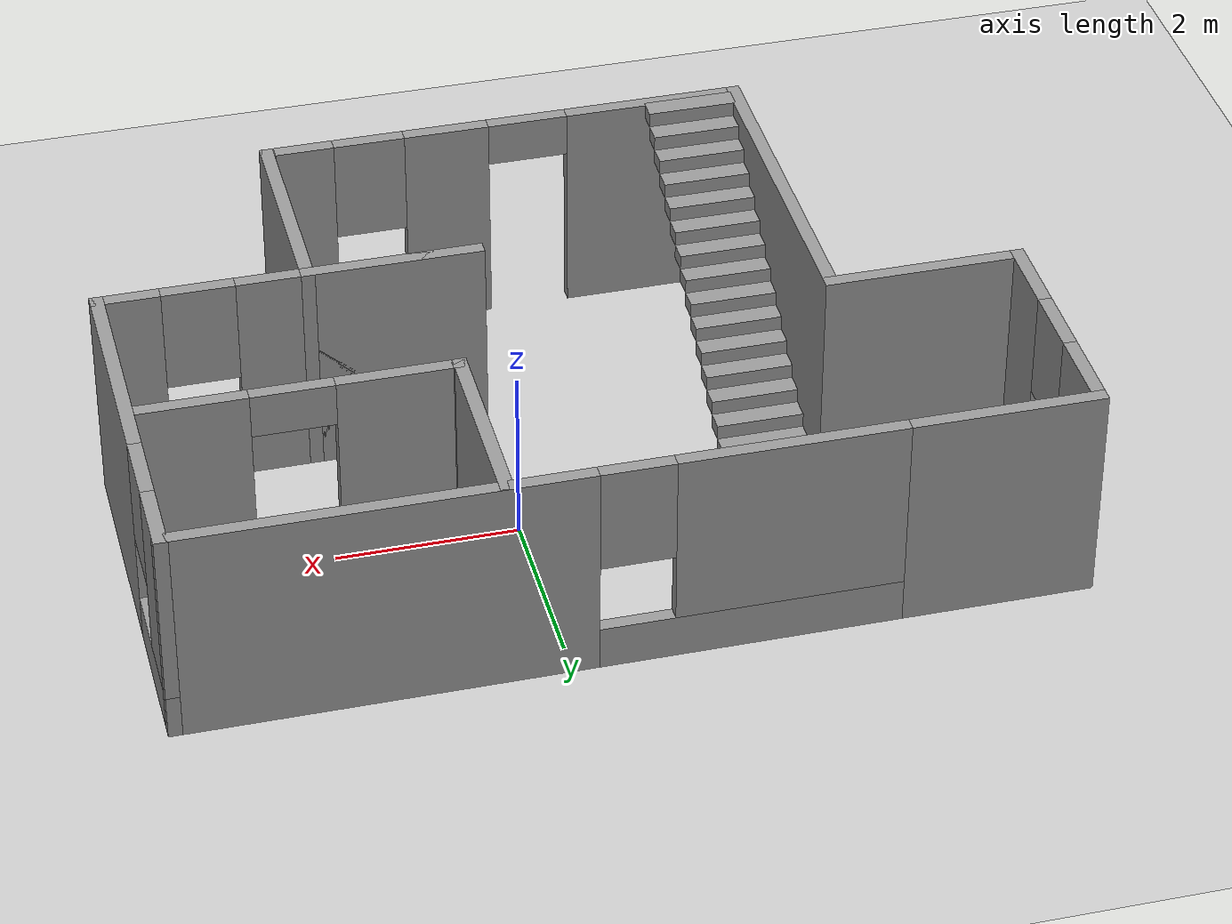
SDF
<sdf version="1.7">
 <world name="default">
  <light name="sun" type="directional">
   <pose>0 0 10 0 -0 0</pose>
   <diffuse>0.8 0.8 0.8 1</diffuse>
   <specular>0.2 0.2 0.2 1</specular>
   <attenuation>
    <range>1000</range>
    <constant>0.9</constant>
    <linear>0.01</linear>
    <quadratic>0.001</quadratic>
   </attenuation>
   <direction>-0.5 0.1 -0.9</direction>
   <spot><inner_angle>0</inner_angle><outer_angle>0</outer_angle><falloff>0</falloff></spot>
  </light>
  <model name="ground_plane">
   <static>1</static>
   <link name="link">
    <collision name="collision">
     <geometry><plane><normal>0 0 1</normal><size>100 100</size></plane></geometry>
     <surface>
      <contact><collide_bitmask>65535</collide_bitmask></contact>
      <friction><ode><mu>100</mu><mu2>50</mu2></ode></friction>
     </surface>
    </collision>
    <visual name="visual">
     <cast_shadows>0</cast_shadows>
     <geometry><plane><normal>0 0 1</normal><size>100 100</size></plane></geometry>
     <material>
      <script><uri>file://media/materials/scripts/gazebo.material</uri><name>Gazebo/Grey</name></script>
     </material>
    </visual>
   </link>
  </model>
  <gravity>0 0 -9.8</gravity>
  <magnetic_field>6e-06 2.3e-05 -4.2e-05</magnetic_field>
  <atmosphere type="adiabatic"/>
  <physics type="ode">
   <max_step_size>0.001</max_step_size>
   <real_time_factor>1</real_time_factor>
   <real_time_update_rate>1000</real_time_update_rate>
  </physics>
  <scene><ambient>0.4 0.4 0.4 1</ambient><background>0.7 0.7 0.7 1</background><shadows>1</shadows></scene>
  <spherical_coordinates>
   <surface_model>EARTH_WGS84</surface_model>
   <latitude_deg>0</latitude_deg>
   <longitude_deg>0</longitude_deg>
   <elevation>0</elevation>
   <heading_deg>0</heading_deg>
  </spherical_coordinates>
  <model name="Building">
   <pose>-0.724399 -0.913088 0 0 -0 0</pose>
   <link name="Stairs_0">
    <visual name="Stairs_0_Visual_0">
     <pose>-2.20765 0.182922 0.083333 0 -0 0</pose>
     <geometry><box><size>1 0.233333 0.166667</size></box></geometry>
     <material>
      <script><uri>file://media/materials/scripts/gazebo.material</uri><name>Gazebo/Grey</name></script>
      <ambient>1 1 1 1</ambient>
     </material>
     <meta><layer>0</layer></meta>
    </visual>
    <collision name="Stairs_0_Collision_0">
     <geometry><box><size>1 0.233333 0.166667</size></box></geometry>
     <pose>-2.20765 0.182922 0.083333 0 -0 0</pose>
    </collision>
    <visual name="Stairs_0_Visual_1">
     <pose>-2.20765 -0.050412 0.25 0 -0 0</pose>
     <geometry><box><size>1 0.233333 0.166667</size></box></geometry>
     <material>
      <script><uri>file://media/materials/scripts/gazebo.material</uri><name>Gazebo/Grey</name></script>
      <ambient>1 1 1 1</ambient>
     </material>
     <meta><layer>0</layer></meta>
    </visual>
    <collision name="Stairs_0_Collision_1">
     <geometry><box><size>1 0.233333 0.166667</size></box></geometry>
     <pose>-2.20765 -0.050412 0.25 0 -0 0</pose>
    </collision>
    <visual name="Stairs_0_Visual_2">
     <pose>-2.20765 -0.283745 0.416667 0 -0 0</pose>
     <geometry><box><size>1 0.233333 0.166667</size></box></geometry>
     <material>
      <script><uri>file://media/materials/scripts/gazebo.material</uri><name>Gazebo/Grey</name></script>
      <ambient>1 1 1 1</ambient>
     </material>
     <meta><layer>0</layer></meta>
    </visual>
    <collision name="Stairs_0_Collision_2">
     <geometry><box><size>1 0.233333 0.166667</size></box></geometry>
     <pose>-2.20765 -0.283745 0.416667 0 -0 0</pose>
    </collision>
    <visual name="Stairs_0_Visual_3">
     <pose>-2.20765 -0.517078 0.583333 0 -0 0</pose>
     <geometry><box><size>1 0.233333 0.166667</size></box></geometry>
     <material>
      <script><uri>file://media/materials/scripts/gazebo.material</uri><name>Gazebo/Grey</name></script>
      <ambient>1 1 1 1</ambient>
     </material>
     <meta><layer>0</layer></meta>
    </visual>
    <collision name="Stairs_0_Collision_3">
     <geometry><box><size>1 0.233333 0.166667</size></box></geometry>
     <pose>-2.20765 -0.517078 0.583333 0 -0 0</pose>
    </collision>
    <visual name="Stairs_0_Visual_4">
     <pose>-2.20765 -0.750412 0.75 0 -0 0</pose>
     <geometry><box><size>1 0.233333 0.166667</size></box></geometry>
     <material>
      <script><uri>file://media/materials/scripts/gazebo.material</uri><name>Gazebo/Grey</name></script>
      <ambient>1 1 1 1</ambient>
     </material>
     <meta><layer>0</layer></meta>
    </visual>
    <collision name="Stairs_0_Collision_4">
     <geometry><box><size>1 0.233333 0.166667</size></box></geometry>
     <pose>-2.20765 -0.750412 0.75 0 -0 0</pose>
    </collision>
    <visual name="Stairs_0_Visual_5">
     <pose>-2.20765 -0.983745 0.916667 0 -0 0</pose>
     <geometry><box><size>1 0.233333 0.166667</size></box></geometry>
     <material>
      <script><uri>file://media/materials/scripts/gazebo.material</uri><name>Gazebo/Grey</name></script>
      <ambient>1 1 1 1</ambient>
     </material>
     <meta><layer>0</layer></meta>
    </visual>
    <collision name="Stairs_0_Collision_5">
     <geometry><box><size>1 0.233333 0.166667</size></box></geometry>
     <pose>-2.20765 -0.983745 0.916667 0 -0 0</pose>
    </collision>
    <visual name="Stairs_0_Visual_6">
     <pose>-2.20765 -1.21708 1.08333 0 -0 0</pose>
     <geometry><box><size>1 0.233333 0.166667</size></box></geometry>
     <material>
      <script><uri>file://media/materials/scripts/gazebo.material</uri><name>Gazebo/Grey</name></script>
      <ambient>1 1 1 1</ambient>
     </material>
     <meta><layer>0</layer></meta>
    </visual>
    <collision name="Stairs_0_Collision_6">
     <geometry><box><size>1 0.233333 0.166667</size></box></geometry>
     <pose>-2.20765 -1.21708 1.08333 0 -0 0</pose>
    </collision>
    <visual name="Stairs_0_Visual_7">
     <pose>-2.20765 -1.45041 1.25 0 -0 0</pose>
     <geometry><box><size>1 0.233333 0.166667</size></box></geometry>
     <material>
      <script><uri>file://media/materials/scripts/gazebo.material</uri><name>Gazebo/Grey</name></script>
      <ambient>1 1 1 1</ambient>
     </material>
     <meta><layer>0</layer></meta>
    </visual>
    <collision name="Stairs_0_Collision_7">
     <geometry><box><size>1 0.233333 0.166667</size></box></geometry>
     <pose>-2.20765 -1.45041 1.25 0 -0 0</pose>
    </collision>
    <visual name="Stairs_0_Visual_8">
     <pose>-2.20765 -1.68375 1.41667 0 -0 0</pose>
     <geometry><box><size>1 0.233333 0.166667</size></box></geometry>
     <material>
      <script><uri>file://media/materials/scripts/gazebo.material</uri><name>Gazebo/Grey</name></script>
      <ambient>1 1 1 1</ambient>
     </material>
     <meta><layer>0</layer></meta>
    </visual>
    <collision name="Stairs_0_Collision_8">
     <geometry><box><size>1 0.233333 0.166667</size></box></geometry>
     <pose>-2.20765 -1.68375 1.41667 0 -0 0</pose>
    </collision>
    <visual name="Stairs_0_Visual_9">
     <pose>-2.20765 -1.91708 1.58333 0 -0 0</pose>
     <geometry><box><size>1 0.233333 0.166667</size></box></geometry>
     <material>
      <script><uri>file://media/materials/scripts/gazebo.material</uri><name>Gazebo/Grey</name></script>
      <ambient>1 1 1 1</ambient>
     </material>
     <meta><layer>0</layer></meta>
    </visual>
    <collision name="Stairs_0_Collision_9">
     <geometry><box><size>1 0.233333 0.166667</size></box></geometry>
     <pose>-2.20765 -1.91708 1.58333 0 -0 0</pose>
    </collision>
    <visual name="Stairs_0_Visual_10">
     <pose>-2.20765 -2.15041 1.75 0 -0 0</pose>
     <geometry><box><size>1 0.233333 0.166667</size></box></geometry>
     <material>
      <script><uri>file://media/materials/scripts/gazebo.material</uri><name>Gazebo/Grey</name></script>
      <ambient>1 1 1 1</ambient>
     </material>
     <meta><layer>0</layer></meta>
    </visual>
    <collision name="Stairs_0_Collision_10">
     <geometry><box><size>1 0.233333 0.166667</size></box></geometry>
     <pose>-2.20765 -2.15041 1.75 0 -0 0</pose>
    </collision>
    <visual name="Stairs_0_Visual_11">
     <pose>-2.20765 -2.38374 1.91667 0 -0 0</pose>
     <geometry><box><size>1 0.233333 0.166667</size></box></geometry>
     <material>
      <script><uri>file://media/materials/scripts/gazebo.material</uri><name>Gazebo/Grey</name></script>
      <ambient>1 1 1 1</ambient>
     </material>
     <meta><layer>0</layer></meta>
    </visual>
    <collision name="Stairs_0_Collision_11">
     <geometry><box><size>1 0.233333 0.166667</size></box></geometry>
     <pose>-2.20765 -2.38374 1.91667 0 -0 0</pose>
    </collision>
    <visual name="Stairs_0_Visual_12">
     <pose>-2.20765 -2.61708 2.08333 0 -0 0</pose>
     <geometry><box><size>1 0.233333 0.166667</size></box></geometry>
     <material>
      <script><uri>file://media/materials/scripts/gazebo.material</uri><name>Gazebo/Grey</name></script>
      <ambient>1 1 1 1</ambient>
     </material>
     <meta><layer>0</layer></meta>
    </visual>
    <collision name="Stairs_0_Collision_12">
     <geometry><box><size>1 0.233333 0.166667</size></box></geometry>
     <pose>-2.20765 -2.61708 2.08333 0 -0 0</pose>
    </collision>
    <visual name="Stairs_0_Visual_13">
     <pose>-2.20765 -2.85041 2.25 0 -0 0</pose>
     <geometry><box><size>1 0.233333 0.166667</size></box></geometry>
     <material>
      <script><uri>file://media/materials/scripts/gazebo.material</uri><name>Gazebo/Grey</name></script>
      <ambient>1 1 1 1</ambient>
     </material>
     <meta><layer>0</layer></meta>
    </visual>
    <collision name="Stairs_0_Collision_13">
     <geometry><box><size>1 0.233333 0.166667</size></box></geometry>
     <pose>-2.20765 -2.85041 2.25 0 -0 0</pose>
    </collision>
    <visual name="Stairs_0_Visual_14">
     <pose>-2.20765 -3.08374 2.41667 0 -0 0</pose>
     <geometry><box><size>1 0.233333 0.166667</size></box></geometry>
     <material>
      <script><uri>file://media/materials/scripts/gazebo.material</uri><name>Gazebo/Grey</name></script>
      <ambient>1 1 1 1</ambient>
     </material>
     <meta><layer>0</layer></meta>
    </visual>
    <collision name="Stairs_0_Collision_14">
     <geometry><box><size>1 0.233333 0.166667</size></box></geometry>
     <pose>-2.20765 -3.08374 2.41667 0 -0 0</pose>
    </collision>
   </link>
   <link name="Wall_0">
    <collision name="Wall_0_Collision">
     <geometry><box><size>4 0.15 2.5</size></box></geometry>
     <pose>0 0 1.25 0 -0 0</pose>
    </collision>
    <visual name="Wall_0_Visual">
     <pose>0 0 1.25 0 -0 0</pose>
     <geometry><box><size>4 0.15 2.5</size></box></geometry>
     <material>
      <script><uri>file://media/materials/scripts/gazebo.material</uri><name>Gazebo/Grey</name></script>
      <ambient>1 1 1 1</ambient>
     </material>
     <meta><layer>0</layer></meta>
    </visual>
    <pose>-2.76 -1.3 0 0 -0 -1.5708</pose>
   </link>
   <link name="Wall_10">
    <pose>-4.85 1.925 0 0 -0 -1.5708</pose>
    <visual name="Wall_10_Visual_0">
     <pose>-0.867719 0 1.25 0 -0 0</pose>
     <geometry><box><size>1.01456 0.15 2.5</size></box></geometry>
     <material>
      <script><uri>file://media/materials/scripts/gazebo.material</uri><name>Gazebo/Grey</name></script>
      <ambient>1 1 1 1</ambient>
     </material>
     <meta><layer>0</layer></meta>
    </visual>
    <collision name="Wall_10_Collision_0">
     <geometry><box><size>1.01456 0.15 2.5</size></box></geometry>
     <pose>-0.867719 0 1.25 0 -0 0</pose>
    </collision>
    <visual name="Wall_10_Visual_1">
     <pose>0.507281 0 0.25 0 -0 0</pose>
     <geometry><box><size>1.73544 0.15 0.5</size></box></geometry>
     <material>
      <script><uri>file://media/materials/scripts/gazebo.material</uri><name>Gazebo/Grey</name></script>
      <ambient>1 1 1 1</ambient>
     </material>
     <meta><layer>0</layer></meta>
    </visual>
    <collision name="Wall_10_Collision_1">
     <geometry><box><size>1.73544 0.15 0.5</size></box></geometry>
     <pose>0.507281 0 0.25 0 -0 0</pose>
    </collision>
    <visual name="Wall_10_Visual_2">
     <pose>0.907281 0 1.5 0 -0 0</pose>
     <geometry><box><size>0.935438 0.15 2</size></box></geometry>
     <material>
      <script><uri>file://media/materials/scripts/gazebo.material</uri><name>Gazebo/Grey</name></script>
      <ambient>1 1 1 1</ambient>
     </material>
     <meta><layer>0</layer></meta>
    </visual>
    <collision name="Wall_10_Collision_2">
     <geometry><box><size>0.935438 0.15 2</size></box></geometry>
     <pose>0.907281 0 1.5 0 -0 0</pose>
    </collision>
    <visual name="Wall_10_Visual_3">
     <pose>0.039562 0 1.9 0 -0 0</pose>
     <geometry><box><size>0.8 0.15 1.2</size></box></geometry>
     <material>
      <script><uri>file://media/materials/scripts/gazebo.material</uri><name>Gazebo/Grey</name></script>
      <ambient>1 1 1 1</ambient>
     </material>
     <meta><layer>0</layer></meta>
    </visual>
    <collision name="Wall_10_Collision_3">
     <geometry><box><size>0.8 0.15 1.2</size></box></geometry>
     <pose>0.039562 0 1.9 0 -0 0</pose>
    </collision>
   </link>
   <link name="Wall_11">
    <collision name="Wall_11_Collision">
     <geometry><box><size>2.24 0.15 2.5</size></box></geometry>
     <pose>0 0 1.25 0 -0 0</pose>
    </collision>
    <visual name="Wall_11_Visual">
     <pose>0 0 1.25 0 -0 0</pose>
     <geometry><box><size>2.24 0.15 2.5</size></box></geometry>
     <material>
      <script><uri>file://media/materials/scripts/gazebo.material</uri><name>Gazebo/Grey</name></script>
      <ambient>1 1 1 1</ambient>
     </material>
     <meta><layer>0</layer></meta>
    </visual>
    <pose>-3.805 0.625 0 0 -0 0</pose>
   </link>
   <link name="Wall_2">
    <pose>-0.085 -3.225 0 0 -0 0</pose>
    <visual name="Wall_2_Visual_0">
     <pose>-1.73077 0 1.25 0 -0 0</pose>
     <geometry><box><size>2.03845 0.15 2.5</size></box></geometry>
     <material>
      <script><uri>file://media/materials/scripts/gazebo.material</uri><name>Gazebo/Grey</name></script>
      <ambient>1 1 1 1</ambient>
     </material>
     <meta><layer>0</layer></meta>
    </visual>
    <collision name="Wall_2_Collision_0">
     <geometry><box><size>2.03845 0.15 2.5</size></box></geometry>
     <pose>-1.73077 0 1.25 0 -0 0</pose>
    </collision>
    <visual name="Wall_2_Visual_1">
     <pose>0.667406 0 1.25 0 -0 0</pose>
     <geometry><box><size>0.957909 0.15 2.5</size></box></geometry>
     <material>
      <script><uri>file://media/materials/scripts/gazebo.material</uri><name>Gazebo/Grey</name></script>
      <ambient>1 1 1 1</ambient>
     </material>
     <meta><layer>0</layer></meta>
    </visual>
    <collision name="Wall_2_Collision_1">
     <geometry><box><size>0.957909 0.15 2.5</size></box></geometry>
     <pose>0.667406 0 1.25 0 -0 0</pose>
    </collision>
    <visual name="Wall_2_Visual_2">
     <pose>1.94818 0 0.25 0 -0 0</pose>
     <geometry><box><size>1.60364 0.15 0.5</size></box></geometry>
     <material>
      <script><uri>file://media/materials/scripts/gazebo.material</uri><name>Gazebo/Grey</name></script>
      <ambient>1 1 1 1</ambient>
     </material>
     <meta><layer>0</layer></meta>
    </visual>
    <collision name="Wall_2_Collision_2">
     <geometry><box><size>1.60364 0.15 0.5</size></box></geometry>
     <pose>1.94818 0 0.25 0 -0 0</pose>
    </collision>
    <visual name="Wall_2_Visual_3">
     <pose>2.34818 0 1.5 0 -0 0</pose>
     <geometry><box><size>0.80364 0.15 2</size></box></geometry>
     <material>
      <script><uri>file://media/materials/scripts/gazebo.material</uri><name>Gazebo/Grey</name></script>
      <ambient>1 1 1 1</ambient>
     </material>
     <meta><layer>0</layer></meta>
    </visual>
    <collision name="Wall_2_Collision_3">
     <geometry><box><size>0.80364 0.15 2</size></box></geometry>
     <pose>2.34818 0 1.5 0 -0 0</pose>
    </collision>
    <visual name="Wall_2_Visual_4">
     <pose>1.54636 0 1.9 0 -0 0</pose>
     <geometry><box><size>0.8 0.15 1.2</size></box></geometry>
     <material>
      <script><uri>file://media/materials/scripts/gazebo.material</uri><name>Gazebo/Grey</name></script>
      <ambient>1 1 1 1</ambient>
     </material>
     <meta><layer>0</layer></meta>
    </visual>
    <collision name="Wall_2_Collision_4">
     <geometry><box><size>0.8 0.15 1.2</size></box></geometry>
     <pose>1.54636 0 1.9 0 -0 0</pose>
    </collision>
    <visual name="Wall_2_Visual_5">
     <pose>-0.261548 0 2.25 0 -0 0</pose>
     <geometry><box><size>0.9 0.15 0.5</size></box></geometry>
     <material>
      <script><uri>file://media/materials/scripts/gazebo.material</uri><name>Gazebo/Grey</name></script>
      <ambient>1 1 1 1</ambient>
     </material>
     <meta><layer>0</layer></meta>
    </visual>
    <collision name="Wall_2_Collision_5">
     <geometry><box><size>0.9 0.15 0.5</size></box></geometry>
     <pose>-0.261548 0 2.25 0 -0 0</pose>
    </collision>
   </link>
   <link name="Wall_23">
    <collision name="Wall_23_Collision">
     <geometry><box><size>2.25 0.15 2.5</size></box></geometry>
     <pose>0 0 1.25 0 -0 0</pose>
    </collision>
    <visual name="Wall_23_Visual">
     <pose>0 0 1.25 0 -0 0</pose>
     <geometry><box><size>2.25 0.15 2.5</size></box></geometry>
     <material>
      <script><uri>file://media/materials/scripts/gazebo.material</uri><name>Gazebo/Grey</name></script>
      <ambient>1 1 1 1</ambient>
     </material>
     <meta><layer>0</layer></meta>
    </visual>
    <pose>1.37088 2.16086 0 0 -0 -1.5708</pose>
   </link>
   <link name="Wall_24">
    <collision name="Wall_24_Collision">
     <geometry><box><size>0.16 0.15 2.5</size></box></geometry>
     <pose>0 0 1.25 0 -0 0</pose>
    </collision>
    <visual name="Wall_24_Visual">
     <pose>0 0 1.25 0 -0 0</pose>
     <geometry><box><size>0.16 0.15 2.5</size></box></geometry>
     <material>
      <script><uri>file://media/materials/scripts/gazebo.material</uri><name>Gazebo/Grey</name></script>
      <ambient>1 1 1 1</ambient>
     </material>
     <meta><layer>0</layer></meta>
    </visual>
    <pose>1.37588 1.11086 0 0 -0 0</pose>
   </link>
   <link name="Wall_25">
    <pose>3.05588 1.11086 0 0 -0 0</pose>
    <visual name="Wall_25_Visual_0">
     <pose>-1.05753 0 1.25 0 -0 0</pose>
     <geometry><box><size>1.38493 0.15 2.5</size></box></geometry>
     <material>
      <script><uri>file://media/materials/scripts/gazebo.material</uri><name>Gazebo/Grey</name></script>
      <ambient>1 1 1 1</ambient>
     </material>
     <meta><layer>0</layer></meta>
    </visual>
    <collision name="Wall_25_Collision_0">
     <geometry><box><size>1.38493 0.15 2.5</size></box></geometry>
     <pose>-1.05753 0 1.25 0 -0 0</pose>
    </collision>
    <visual name="Wall_25_Visual_1">
     <pose>1.14247 0 1.25 0 -0 0</pose>
     <geometry><box><size>1.21507 0.15 2.5</size></box></geometry>
     <material>
      <script><uri>file://media/materials/scripts/gazebo.material</uri><name>Gazebo/Grey</name></script>
      <ambient>1 1 1 1</ambient>
     </material>
     <meta><layer>0</layer></meta>
    </visual>
    <collision name="Wall_25_Collision_1">
     <geometry><box><size>1.21507 0.15 2.5</size></box></geometry>
     <pose>1.14247 0 1.25 0 -0 0</pose>
    </collision>
    <visual name="Wall_25_Visual_2">
     <pose>0.084929 0 2.25 0 -0 0</pose>
     <geometry><box><size>0.9 0.15 0.5</size></box></geometry>
     <material>
      <script><uri>file://media/materials/scripts/gazebo.material</uri><name>Gazebo/Grey</name></script>
      <ambient>1 1 1 1</ambient>
     </material>
     <meta><layer>0</layer></meta>
    </visual>
    <collision name="Wall_25_Collision_2">
     <geometry><box><size>0.9 0.15 0.5</size></box></geometry>
     <pose>0.084929 0 2.25 0 -0 0</pose>
    </collision>
   </link>
   <link name="Wall_3">
    <collision name="Wall_3_Collision">
     <geometry><box><size>0.16 0.15 2.5</size></box></geometry>
     <pose>0 0 1.25 0 -0 0</pose>
    </collision>
    <visual name="Wall_3_Visual">
     <pose>0 0 1.25 0 -0 0</pose>
     <geometry><box><size>0.16 0.15 2.5</size></box></geometry>
     <material>
      <script><uri>file://media/materials/scripts/gazebo.material</uri><name>Gazebo/Grey</name></script>
      <ambient>1 1 1 1</ambient>
     </material>
     <meta><layer>0</layer></meta>
    </visual>
    <pose>2.595 -3.225 0 0 -0 0</pose>
   </link>
   <link name="Wall_4">
    <collision name="Wall_4_Collision">
     <geometry><box><size>2.5 0.15 2.5</size></box></geometry>
     <pose>0 0 1.25 0 -0 0</pose>
    </collision>
    <visual name="Wall_4_Visual">
     <pose>0 0 1.25 0 -0 0</pose>
     <geometry><box><size>2.5 0.15 2.5</size></box></geometry>
     <material>
      <script><uri>file://media/materials/scripts/gazebo.material</uri><name>Gazebo/Grey</name></script>
      <ambient>1 1 1 1</ambient>
     </material>
     <meta><layer>0</layer></meta>
    </visual>
    <pose>2.6 -2.05 0 0 -0 1.5708</pose>
   </link>
   <link name="Wall_5">
    <collision name="Wall_5_Collision">
     <geometry><box><size>2 0.15 2.5</size></box></geometry>
     <pose>0 0 1.25 0 -0 0</pose>
    </collision>
    <visual name="Wall_5_Visual">
     <pose>0 0 1.25 0 -0 0</pose>
     <geometry><box><size>2 0.15 2.5</size></box></geometry>
     <material>
      <script><uri>file://media/materials/scripts/gazebo.material</uri><name>Gazebo/Grey</name></script>
      <ambient>1 1 1 1</ambient>
     </material>
     <meta><layer>0</layer></meta>
    </visual>
    <pose>1.675 -0.875 0 0 -0 3.14159</pose>
   </link>
   <link name="Wall_6">
    <pose>2.8 -0.875 0 0 -0 0</pose>
    <visual name="Wall_6_Visual_0">
     <pose>-0.772029 0 1.25 0 -0 0</pose>
     <geometry><box><size>2.70594 0.15 2.5</size></box></geometry>
     <material>
      <script><uri>file://media/materials/scripts/gazebo.material</uri><name>Gazebo/Grey</name></script>
      <ambient>1 1 1 1</ambient>
     </material>
     <meta><layer>0</layer></meta>
    </visual>
    <collision name="Wall_6_Collision_0">
     <geometry><box><size>2.70594 0.15 2.5</size></box></geometry>
     <pose>-0.772029 0 1.25 0 -0 0</pose>
    </collision>
    <visual name="Wall_6_Visual_1">
     <pose>1.35297 0 0.25 0 -0 0</pose>
     <geometry><box><size>1.54406 0.15 0.5</size></box></geometry>
     <material>
      <script><uri>file://media/materials/scripts/gazebo.material</uri><name>Gazebo/Grey</name></script>
      <ambient>1 1 1 1</ambient>
     </material>
     <meta><layer>0</layer></meta>
    </visual>
    <collision name="Wall_6_Collision_1">
     <geometry><box><size>1.54406 0.15 0.5</size></box></geometry>
     <pose>1.35297 0 0.25 0 -0 0</pose>
    </collision>
    <visual name="Wall_6_Visual_2">
     <pose>1.75297 0 1.5 0 -0 0</pose>
     <geometry><box><size>0.744058 0.15 2</size></box></geometry>
     <material>
      <script><uri>file://media/materials/scripts/gazebo.material</uri><name>Gazebo/Grey</name></script>
      <ambient>1 1 1 1</ambient>
     </material>
     <meta><layer>0</layer></meta>
    </visual>
    <collision name="Wall_6_Collision_2">
     <geometry><box><size>0.744058 0.15 2</size></box></geometry>
     <pose>1.75297 0 1.5 0 -0 0</pose>
    </collision>
    <visual name="Wall_6_Visual_3">
     <pose>0.980942 0 1.9 0 -0 0</pose>
     <geometry><box><size>0.8 0.15 1.2</size></box></geometry>
     <material>
      <script><uri>file://media/materials/scripts/gazebo.material</uri><name>Gazebo/Grey</name></script>
      <ambient>1 1 1 1</ambient>
     </material>
     <meta><layer>0</layer></meta>
    </visual>
    <collision name="Wall_6_Collision_3">
     <geometry><box><size>0.8 0.15 1.2</size></box></geometry>
     <pose>0.980942 0 1.9 0 -0 0</pose>
    </collision>
   </link>
   <link name="Wall_7">
    <pose>4.85 1.175 0 0 -0 1.5708</pose>
    <visual name="Wall_7_Visual_0">
     <pose>-0.822002 0 1.25 0 -0 0</pose>
     <geometry><box><size>2.606 0.15 2.5</size></box></geometry>
     <material>
      <script><uri>file://media/materials/scripts/gazebo.material</uri><name>Gazebo/Grey</name></script>
      <ambient>1 1 1 1</ambient>
     </material>
     <meta><layer>0</layer></meta>
    </visual>
    <collision name="Wall_7_Collision_0">
     <geometry><box><size>2.606 0.15 2.5</size></box></geometry>
     <pose>-0.822002 0 1.25 0 -0 0</pose>
    </collision>
    <visual name="Wall_7_Visual_1">
     <pose>1.303 0 0.25 0 -0 0</pose>
     <geometry><box><size>1.644 0.15 0.5</size></box></geometry>
     <material>
      <script><uri>file://media/materials/scripts/gazebo.material</uri><name>Gazebo/Grey</name></script>
      <ambient>1 1 1 1</ambient>
     </material>
     <meta><layer>0</layer></meta>
    </visual>
    <collision name="Wall_7_Collision_1">
     <geometry><box><size>1.644 0.15 0.5</size></box></geometry>
     <pose>1.303 0 0.25 0 -0 0</pose>
    </collision>
    <visual name="Wall_7_Visual_2">
     <pose>1.703 0 1.5 0 -0 0</pose>
     <geometry><box><size>0.844004 0.15 2</size></box></geometry>
     <material>
      <script><uri>file://media/materials/scripts/gazebo.material</uri><name>Gazebo/Grey</name></script>
      <ambient>1 1 1 1</ambient>
     </material>
     <meta><layer>0</layer></meta>
    </visual>
    <collision name="Wall_7_Collision_2">
     <geometry><box><size>0.844004 0.15 2</size></box></geometry>
     <pose>1.703 0 1.5 0 -0 0</pose>
    </collision>
    <visual name="Wall_7_Visual_3">
     <pose>0.880996 0 1.9 0 -0 0</pose>
     <geometry><box><size>0.8 0.15 1.2</size></box></geometry>
     <material>
      <script><uri>file://media/materials/scripts/gazebo.material</uri><name>Gazebo/Grey</name></script>
      <ambient>1 1 1 1</ambient>
     </material>
     <meta><layer>0</layer></meta>
    </visual>
    <collision name="Wall_7_Collision_3">
     <geometry><box><size>0.8 0.15 1.2</size></box></geometry>
     <pose>0.880996 0 1.9 0 -0 0</pose>
    </collision>
   </link>
   <link name="Wall_8">
    <pose>1.05 3.225 0 0 -0 3.14159</pose>
    <visual name="Wall_8_Visual_0">
     <pose>-1.62684 0 1.25 0 -0 0</pose>
     <geometry><box><size>4.49632 0.15 2.5</size></box></geometry>
     <material>
      <script><uri>file://media/materials/scripts/gazebo.material</uri><name>Gazebo/Grey</name></script>
      <ambient>1 1 1 1</ambient>
     </material>
     <meta><layer>0</layer></meta>
    </visual>
    <collision name="Wall_8_Collision_0">
     <geometry><box><size>4.49632 0.15 2.5</size></box></geometry>
     <pose>-1.62684 0 1.25 0 -0 0</pose>
    </collision>
    <visual name="Wall_8_Visual_1">
     <pose>2.24816 0 0.25 0 -0 0</pose>
     <geometry><box><size>3.25368 0.15 0.5</size></box></geometry>
     <material>
      <script><uri>file://media/materials/scripts/gazebo.material</uri><name>Gazebo/Grey</name></script>
      <ambient>1 1 1 1</ambient>
     </material>
     <meta><layer>0</layer></meta>
    </visual>
    <collision name="Wall_8_Collision_1">
     <geometry><box><size>3.25368 0.15 0.5</size></box></geometry>
     <pose>2.24816 0 0.25 0 -0 0</pose>
    </collision>
    <visual name="Wall_8_Visual_2">
     <pose>2.64816 0 1.5 0 -0 0</pose>
     <geometry><box><size>2.45368 0.15 2</size></box></geometry>
     <material>
      <script><uri>file://media/materials/scripts/gazebo.material</uri><name>Gazebo/Grey</name></script>
      <ambient>1 1 1 1</ambient>
     </material>
     <meta><layer>0</layer></meta>
    </visual>
    <collision name="Wall_8_Collision_2">
     <geometry><box><size>2.45368 0.15 2</size></box></geometry>
     <pose>2.64816 0 1.5 0 -0 0</pose>
    </collision>
    <visual name="Wall_8_Visual_3">
     <pose>1.02132 0 1.9 0 -0 0</pose>
     <geometry><box><size>0.8 0.15 1.2</size></box></geometry>
     <material>
      <script><uri>file://media/materials/scripts/gazebo.material</uri><name>Gazebo/Grey</name></script>
      <ambient>1 1 1 1</ambient>
     </material>
     <meta><layer>0</layer></meta>
    </visual>
    <collision name="Wall_8_Collision_3">
     <geometry><box><size>0.8 0.15 1.2</size></box></geometry>
     <pose>1.02132 0 1.9 0 -0 0</pose>
    </collision>
   </link>
   <link name="Wall_9">
    <collision name="Wall_9_Collision">
     <geometry><box><size>2.25 0.15 2.5</size></box></geometry>
     <pose>0 0 1.25 0 -0 0</pose>
    </collision>
    <visual name="Wall_9_Visual">
     <pose>0 0 1.25 0 -0 0</pose>
     <geometry><box><size>2.25 0.15 2.5</size></box></geometry>
     <material>
      <script><uri>file://media/materials/scripts/gazebo.material</uri><name>Gazebo/Grey</name></script>
      <ambient>1 1 1 1</ambient>
     </material>
     <meta><layer>0</layer></meta>
    </visual>
    <pose>-3.8 3.225 0 0 -0 3.14159</pose>
   </link>
   <static>1</static>
  </model>
  <model name="unit_cylinder">
   <pose>1.27127 -2.39148 0.499998 3e-06 -4e-06 0</pose>
   <link name="link">
    <inertial>
     <mass>1</mass>
     <inertia><ixx>0.145833</ixx><ixy>0</ixy><ixz>0</ixz><iyy>0.145833</iyy><iyz>0</iyz><izz>0.125</izz></inertia>
    </inertial>
    <collision name="collision">
     <geometry><cylinder><radius>0.5</radius><length>1</length></cylinder></geometry>
    </collision>
    <visual name="visual">
     <geometry><cylinder><radius>0.5</radius><length>1</length></cylinder></geometry>
     <material>
      <script><name>Gazebo/Grey</name><uri>file://media/materials/scripts/gazebo.material</uri></script>
     </material>
    </visual>
   </link>
  </model>
  <model name="unit_box">
   <pose>-4.99475 1.73117 0.5 0 -0 0.001148</pose>
   <link name="link">
    <inertial>
     <mass>1</mass>
     <inertia>
      <ixx>0.166667</ixx>
      <ixy>0</ixy>
      <ixz>0</ixz>
      <iyy>0.166667</iyy>
      <iyz>0</iyz>
      <izz>0.166667</izz>
     </inertia>
    </inertial>
    <collision name="collision"><geometry><box><size>1 1 1</size></box></geometry></collision>
    <visual name="visual">
     <geometry><box><size>1 1 1</size></box></geometry>
     <material>
      <script><name>Gazebo/Grey</name><uri>file://media/materials/scripts/gazebo.material</uri></script>
     </material>
    </visual>
   </link>
  </model>
  <model name="unit_sphere_0">
   <pose>1.22148 1.73691 0.5 0.13906 0.023416 -0.094302</pose>
   <link name="link">
    <inertial>
     <mass>1</mass>
     <inertia><ixx>0.1</ixx><ixy>0</ixy><ixz>0</ixz><iyy>0.1</iyy><iyz>0</iyz><izz>0.1</izz></inertia>
    </inertial>
    <collision name="collision"><geometry><sphere><radius>0.5</radius></sphere></geometry></collision>
    <visual name="visual">
     <geometry><sphere><radius>0.5</radius></sphere></geometry>
     <material>
      <script><name>Gazebo/Grey</name><uri>file://media/materials/scripts/gazebo.material</uri></script>
     </material>
    </visual>
   </link>
  </model>
  <model name="unit_cylinder_0">
   <pose>0.071473 1.73369 0.5 -0 -0 -0</pose>
   <link name="link">
    <inertial>
     <mass>1</mass>
     <inertia><ixx>0.145833</ixx><ixy>0</ixy><ixz>0</ixz><iyy>0.145833</iyy><iyz>0</iyz><izz>0.125</izz></inertia>
    </inertial>
    <collision name="collision">
     <geometry><cylinder><radius>0.5</radius><length>1</length></cylinder></geometry>
    </collision>
    <visual name="visual">
     <geometry><cylinder><radius>0.5</radius><length>1</length></cylinder></geometry>
     <material>
      <script><name>Gazebo/Grey</name><uri>file://media/materials/scripts/gazebo.material</uri></script>
     </material>
    </visual>
   </link>
  </model>
 </world>
</sdf>
